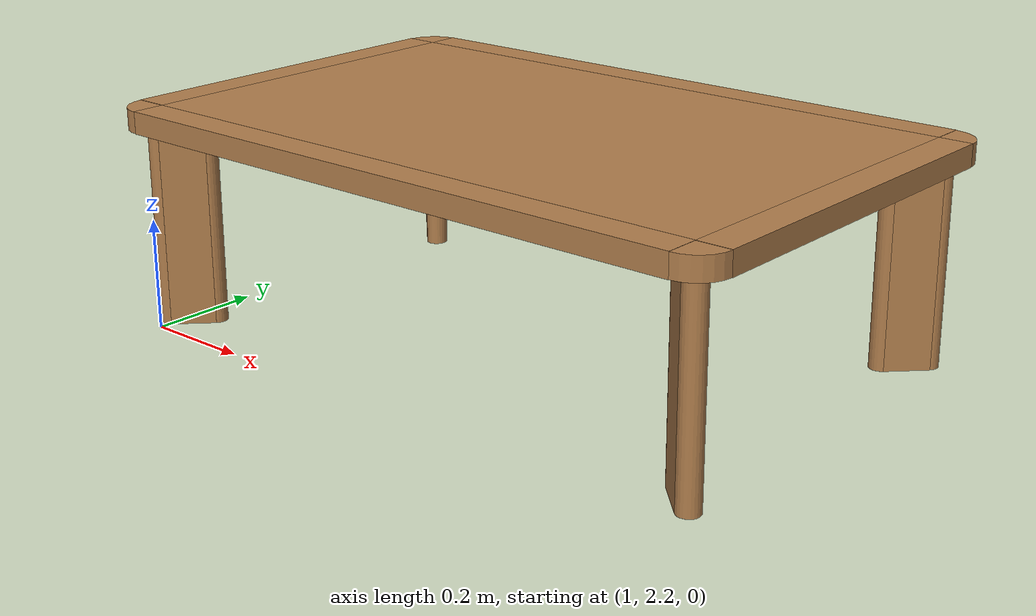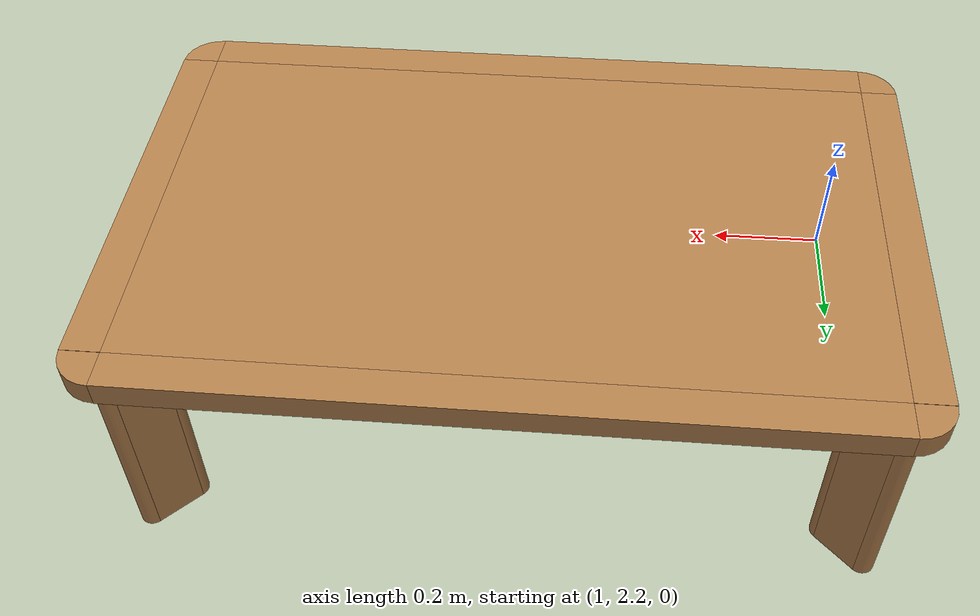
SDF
<sdf version="1.6">
 <world name="default">
  <model name="kitchen_lowtable">
   <link name="link">
    <inertial>
     <mass>10</mass>
     <inertia><ixx>1</ixx><ixy>0</ixy><ixz>0</ixz><iyy>1</iyy><iyz>0</iyz><izz>1</izz></inertia>
    </inertial>
    <visual name="center_board">
     <pose>0 0 0.38 0 -0 0</pose>
     <geometry><box><size>0.68 1.13 0.04</size></box></geometry>
     <material>
      <script><uri>model://base_materials/wood/scripts/wood.material</uri><name>base_materials/wood</name></script>
     </material>
    </visual>
    <collision name="collision_center_board">
     <pose>0 0 0.38 0 -0 0</pose>
     <geometry><box><size>0.68 1.13 0.04</size></box></geometry>
    </collision>
    <visual name="front_board">
     <pose>0.37 0 0.38 0 -0 0</pose>
     <geometry><box><size>0.06 1.13 0.04</size></box></geometry>
     <material>
      <script><uri>model://base_materials/wood/scripts/wood.material</uri><name>base_materials/wood</name></script>
     </material>
    </visual>
    <collision name="collision_front_board">
     <pose>0.37 0 0.38 0 -0 0</pose>
     <geometry><box><size>0.06 1.13 0.04</size></box></geometry>
    </collision>
    <visual name="back_board">
     <pose>-0.37 0 0.38 0 -0 0</pose>
     <geometry><box><size>0.06 1.13 0.04</size></box></geometry>
     <material>
      <script><uri>model://base_materials/wood/scripts/wood.material</uri><name>base_materials/wood</name></script>
     </material>
    </visual>
    <collision name="collision_back_board">
     <pose>-0.37 0 0.38 0 -0 0</pose>
     <geometry><box><size>0.06 1.13 0.04</size></box></geometry>
    </collision>
    <visual name="right_board">
     <pose>0 0.595 0.38 0 -0 0</pose>
     <geometry><box><size>0.68 0.06 0.04</size></box></geometry>
     <material>
      <script><uri>model://base_materials/wood/scripts/wood.material</uri><name>base_materials/wood</name></script>
     </material>
    </visual>
    <collision name="collision_right_board">
     <pose>0 0.595 0.38 0 -0 0</pose>
     <geometry><box><size>0.68 0.06 0.04</size></box></geometry>
    </collision>
    <visual name="left_board">
     <pose>0 -0.595 0.38 0 -0 0</pose>
     <geometry><box><size>0.68 0.06 0.04</size></box></geometry>
     <material>
      <script><uri>model://base_materials/wood/scripts/wood.material</uri><name>base_materials/wood</name></script>
     </material>
    </visual>
    <collision name="collision_left_board">
     <pose>0 -0.595 0.38 0 -0 0</pose>
     <geometry><box><size>0.68 0.06 0.04</size></box></geometry>
    </collision>
    <visual name="front_right_corner_board">
     <pose>0.34 0.565 0.38 0 -0 0</pose>
     <geometry><cylinder><radius>0.06</radius><length>0.039</length></cylinder></geometry>
     <material>
      <script><uri>model://base_materials/wood/scripts/wood.material</uri><name>base_materials/wood</name></script>
     </material>
    </visual>
    <collision name="collision_front_right_corner_board">
     <pose>0.34 0.565 0.38 0 -0 0</pose>
     <geometry><cylinder><radius>0.06</radius><length>0.039</length></cylinder></geometry>
    </collision>
    <visual name="front_left_corner_board">
     <pose>0.34 -0.565 0.38 0 -0 0</pose>
     <geometry><cylinder><radius>0.06</radius><length>0.039</length></cylinder></geometry>
     <material>
      <script><uri>model://base_materials/wood/scripts/wood.material</uri><name>base_materials/wood</name></script>
     </material>
    </visual>
    <collision name="collision_front_left_corner_board">
     <pose>0.34 -0.565 0.38 0 -0 0</pose>
     <geometry><cylinder><radius>0.06</radius><length>0.039</length></cylinder></geometry>
    </collision>
    <visual name="front_back_right_corner_board">
     <pose>-0.34 0.565 0.38 0 -0 0</pose>
     <geometry><cylinder><radius>0.06</radius><length>0.039</length></cylinder></geometry>
     <material>
      <script><uri>model://base_materials/wood/scripts/wood.material</uri><name>base_materials/wood</name></script>
     </material>
    </visual>
    <collision name="collision_back_right_corner_board">
     <pose>-0.34 0.565 0.38 0 -0 0</pose>
     <geometry><cylinder><radius>0.06</radius><length>0.039</length></cylinder></geometry>
    </collision>
    <visual name="front_back_left_corner_board">
     <pose>-0.34 -0.565 0.38 0 -0 0</pose>
     <geometry><cylinder><radius>0.06</radius><length>0.039</length></cylinder></geometry>
     <material>
      <script><uri>model://base_materials/wood/scripts/wood.material</uri><name>base_materials/wood</name></script>
     </material>
    </visual>
    <collision name="collision_back_left_corner_board">
     <pose>-0.34 -0.565 0.38 0 -0 0</pose>
     <geometry><cylinder><radius>0.06</radius><length>0.039</length></cylinder></geometry>
    </collision>
    <visual name="front_left_corner_frame1">
     <pose>0.345858 -0.57086 0.18 0 -0 0</pose>
     <geometry><cylinder><radius>0.02</radius><length>0.36</length></cylinder></geometry>
     <material>
      <script><uri>model://base_materials/wood/scripts/wood.material</uri><name>base_materials/wood</name></script>
     </material>
    </visual>
    <collision name="collision_front_left_corner_frame1">
     <pose>0.345858 -0.57086 0.18 0 -0 0</pose>
     <geometry><cylinder><radius>0.02</radius><length>0.36</length></cylinder></geometry>
    </collision>
    <visual name="front_left_corner_frame2">
     <pose>0.317574 -0.54257 0.18 0 -0 0.7854</pose>
     <geometry><box><size>0.04 0.08 0.36</size></box></geometry>
     <material>
      <script><uri>model://base_materials/wood/scripts/wood.material</uri><name>base_materials/wood</name></script>
     </material>
    </visual>
    <collision name="collision_front_left_corner_frame2">
     <pose>0.317574 -0.54257 0.18 0 -0 0.7854</pose>
     <geometry><box><size>0.04 0.08 0.36</size></box></geometry>
    </collision>
    <visual name="front_left_corner_frame3">
     <pose>0.289289 -0.51429 0.18 0 -0 0</pose>
     <geometry><cylinder><radius>0.02</radius><length>0.36</length></cylinder></geometry>
     <material>
      <script><uri>model://base_materials/wood/scripts/wood.material</uri><name>base_materials/wood</name></script>
     </material>
    </visual>
    <collision name="collision_front_left_corner_frame3">
     <pose>0.289289 -0.51429 0.18 0 -0 0</pose>
     <geometry><cylinder><radius>0.02</radius><length>0.36</length></cylinder></geometry>
    </collision>
    <visual name="front_right_corner_frame1">
     <pose>0.345858 0.57086 0.18 0 -0 0</pose>
     <geometry><cylinder><radius>0.02</radius><length>0.36</length></cylinder></geometry>
     <material>
      <script><uri>model://base_materials/wood/scripts/wood.material</uri><name>base_materials/wood</name></script>
     </material>
    </visual>
    <collision name="collision_front_right_corner_frame1">
     <pose>0.345858 0.57086 0.18 0 -0 0</pose>
     <geometry><cylinder><radius>0.02</radius><length>0.36</length></cylinder></geometry>
    </collision>
    <visual name="front_right_corner_frame2">
     <pose>0.317574 0.54257 0.18 0 0 -0.7854</pose>
     <geometry><box><size>0.04 0.08 0.36</size></box></geometry>
     <material>
      <script><uri>model://base_materials/wood/scripts/wood.material</uri><name>base_materials/wood</name></script>
     </material>
    </visual>
    <collision name="collision_front_right_corner_frame2">
     <pose>0.317574 0.54257 0.18 0 0 -0.7854</pose>
     <geometry><box><size>0.04 0.08 0.36</size></box></geometry>
    </collision>
    <visual name="front_right_corner_frame3">
     <pose>0.289289 0.51429 0.18 0 -0 0</pose>
     <geometry><cylinder><radius>0.02</radius><length>0.36</length></cylinder></geometry>
     <material>
      <script><uri>model://base_materials/wood/scripts/wood.material</uri><name>base_materials/wood</name></script>
     </material>
    </visual>
    <collision name="collision_front_right_corner_frame3">
     <pose>0.289289 0.51429 0.18 0 -0 0</pose>
     <geometry><cylinder><radius>0.02</radius><length>0.36</length></cylinder></geometry>
    </collision>
    <visual name="back_left_corner_frame1">
     <pose>-0.345858 -0.57086 0.18 0 -0 0</pose>
     <geometry><cylinder><radius>0.02</radius><length>0.36</length></cylinder></geometry>
     <material>
      <script><uri>model://base_materials/wood/scripts/wood.material</uri><name>base_materials/wood</name></script>
     </material>
    </visual>
    <collision name="collision_back_left_corner_frame1">
     <pose>-0.345858 -0.57086 0.18 0 -0 0</pose>
     <geometry><cylinder><radius>0.02</radius><length>0.36</length></cylinder></geometry>
    </collision>
    <visual name="back_left_corner_frame2">
     <pose>-0.317574 -0.54257 0.18 0 0 -0.7854</pose>
     <geometry><box><size>0.04 0.08 0.36</size></box></geometry>
     <material>
      <script><uri>model://base_materials/wood/scripts/wood.material</uri><name>base_materials/wood</name></script>
     </material>
    </visual>
    <collision name="collision_back_left_corner_frame2">
     <pose>-0.317574 -0.54257 0.18 0 0 -0.7854</pose>
     <geometry><box><size>0.04 0.08 0.36</size></box></geometry>
    </collision>
    <visual name="back_left_corner_frame3">
     <pose>-0.289289 -0.51429 0.18 0 -0 0</pose>
     <geometry><cylinder><radius>0.02</radius><length>0.36</length></cylinder></geometry>
     <material>
      <script><uri>model://base_materials/wood/scripts/wood.material</uri><name>base_materials/wood</name></script>
     </material>
    </visual>
    <collision name="collision_back_left_corner_frame3">
     <pose>-0.289289 -0.51429 0.18 0 -0 0</pose>
     <geometry><cylinder><radius>0.02</radius><length>0.36</length></cylinder></geometry>
    </collision>
    <visual name="back_right_corner_frame1">
     <pose>-0.345858 0.57086 0.18 0 -0 0</pose>
     <geometry><cylinder><radius>0.02</radius><length>0.36</length></cylinder></geometry>
     <material>
      <script><uri>model://base_materials/wood/scripts/wood.material</uri><name>base_materials/wood</name></script>
     </material>
    </visual>
    <collision name="collision_back_right_corner_frame1">
     <pose>-0.345858 0.57086 0.18 0 -0 0</pose>
     <geometry><cylinder><radius>0.02</radius><length>0.36</length></cylinder></geometry>
    </collision>
    <visual name="back_right_corner_frame2">
     <pose>-0.317574 0.54257 0.18 0 -0 0.7854</pose>
     <geometry><box><size>0.04 0.08 0.36</size></box></geometry>
     <material>
      <script><uri>model://base_materials/wood/scripts/wood.material</uri><name>base_materials/wood</name></script>
     </material>
    </visual>
    <collision name="collision_back_right_corner_frame2">
     <pose>-0.317574 0.54257 0.18 0 -0 0.7854</pose>
     <geometry><box><size>0.04 0.08 0.36</size></box></geometry>
    </collision>
    <visual name="back_right_corner_frame3">
     <pose>-0.289289 0.51429 0.18 0 -0 0</pose>
     <geometry><cylinder><radius>0.02</radius><length>0.36</length></cylinder></geometry>
     <material>
      <script><uri>model://base_materials/wood/scripts/wood.material</uri><name>base_materials/wood</name></script>
     </material>
    </visual>
    <collision name="collision_back_right_corner_frame3">
     <pose>-0.289289 0.51429 0.18 0 -0 0</pose>
     <geometry><cylinder><radius>0.02</radius><length>0.36</length></cylinder></geometry>
    </collision>
    <velocity_decay><linear>0</linear><angular>0</angular></velocity_decay>
   </link>
   <static>1</static>
   <pose>1.56 2.58 0 0 -0 1.5708</pose>
  </model>
 </world>
</sdf>
